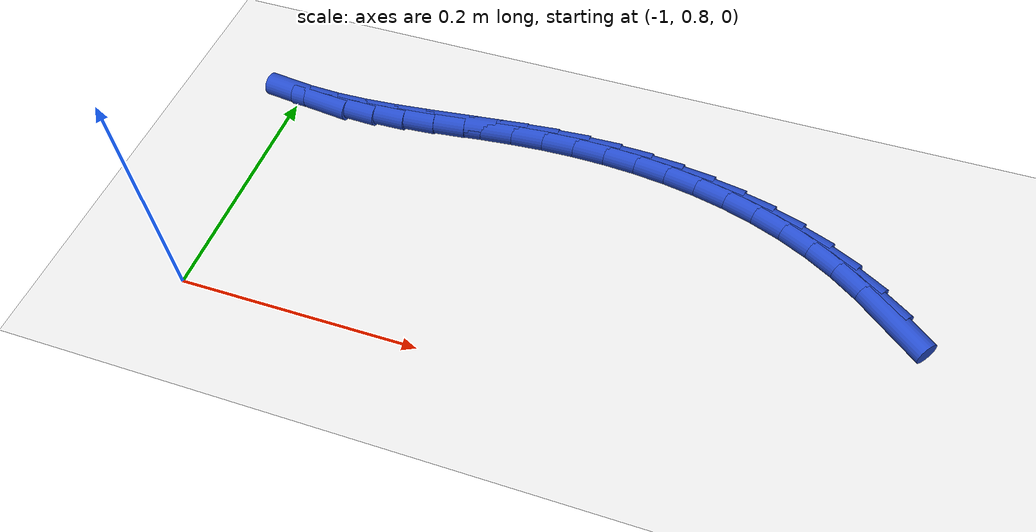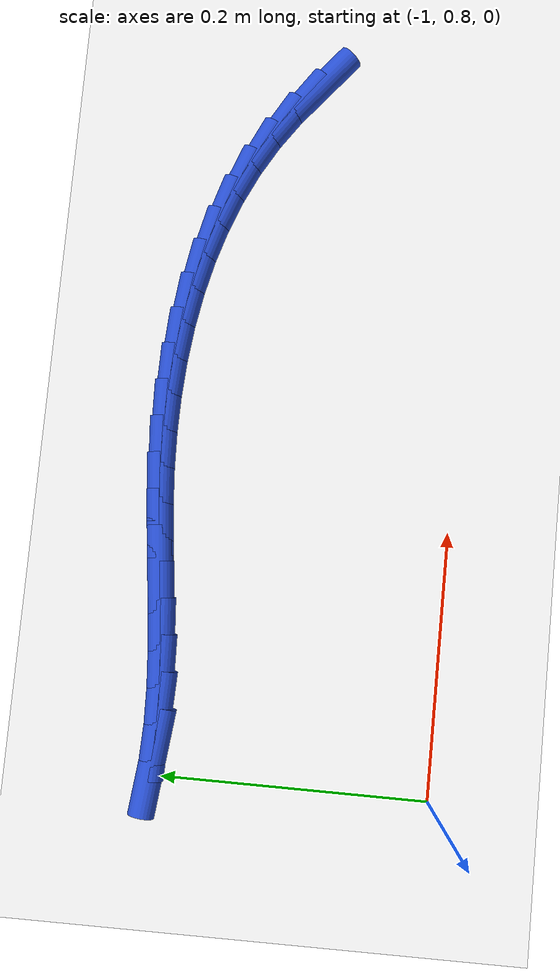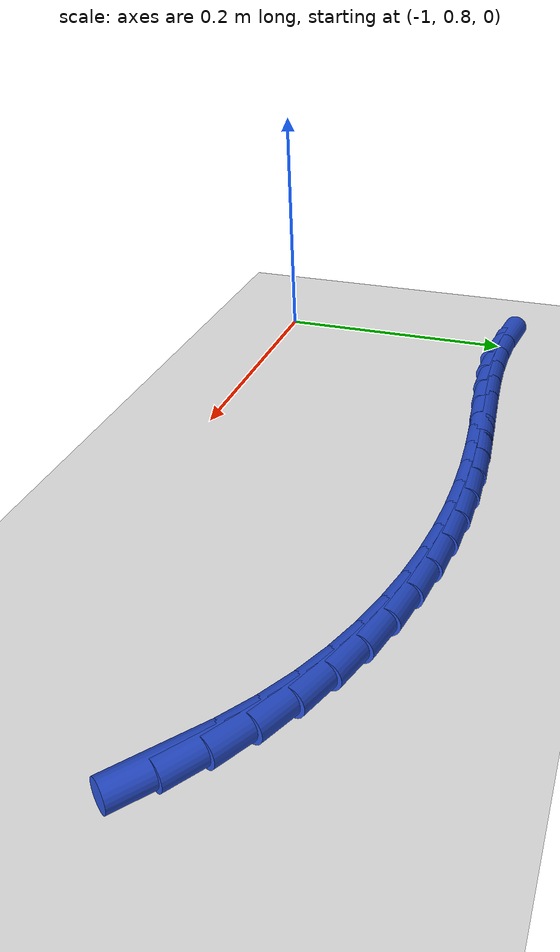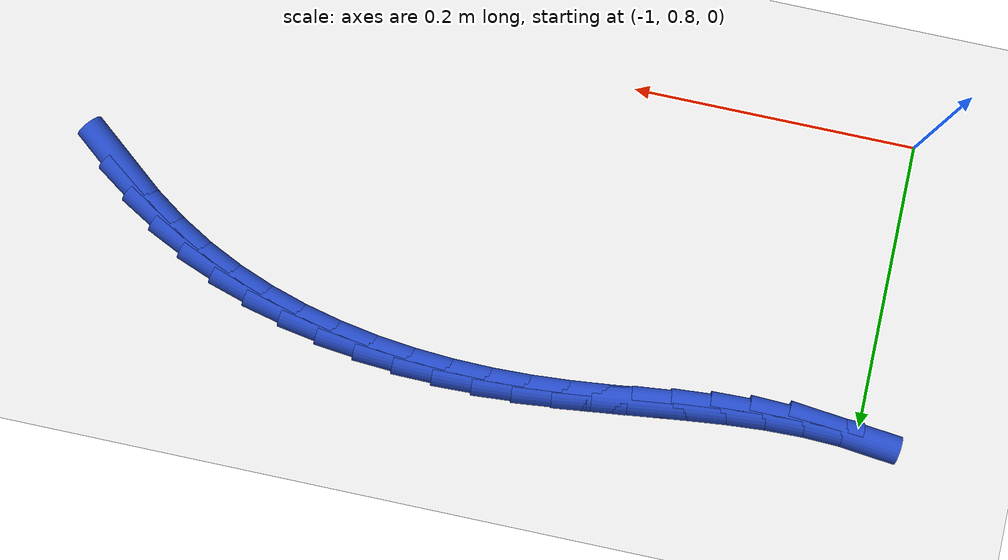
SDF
<sdf version="1.6">
 <world name="default">
  <model name="ground_plane">
   <static>1</static>
   <link name="link">
    <collision name="collision">
     <geometry><plane><normal>0 0 1</normal><size>100 100</size></plane></geometry>
     <surface><friction><ode><mu>100</mu><mu2>50</mu2></ode></friction></surface>
    </collision>
    <visual name="visual">
     <cast_shadows>0</cast_shadows>
     <geometry><plane><normal>0 0 1</normal><size>100 100</size></plane></geometry>
     <material>
      <script><uri>file://media/materials/scripts/gazebo.material</uri><name>Gazebo/WhiteGlow</name></script>
     </material>
    </visual>
   </link>
  </model>
  <model name="line">
   <link name="link_39">
    <pose>-0.46340883471702954 0.9317828956970082 0.01 0 1.57 -0.6871550664892319</pose>
    <collision name="collision">
     <geometry><cylinder><radius>0.01</radius><length>0.08</length></cylinder></geometry>
    </collision>
    <visual name="visual">
     <material>
      <script><name>Gazebo/Blue</name><uri>file://media/materials/scripts/gazebo.material</uri></script>
     </material>
     <geometry><cylinder><radius>0.01</radius><length>0.08</length></cylinder></geometry>
    </visual>
   </link>
   <link name="link_40">
    <pose>-0.4842401721432311 0.9488763506752163 0.01 0 1.57 -0.6085506453058709</pose>
    <collision name="collision">
     <geometry><cylinder><radius>0.01</radius><length>0.08</length></cylinder></geometry>
    </collision>
    <visual name="visual">
     <material>
      <script><name>Gazebo/Blue</name><uri>file://media/materials/scripts/gazebo.material</uri></script>
     </material>
     <geometry><cylinder><radius>0.01</radius><length>0.08</length></cylinder></geometry>
    </visual>
   </link>
   <link name="link_41">
    <pose>-0.5062597529535444 0.9642187952170097 0.01 0 1.57 -0.524719948001382</pose>
    <collision name="collision">
     <geometry><cylinder><radius>0.01</radius><length>0.08</length></cylinder></geometry>
    </collision>
    <visual name="visual">
     <material>
      <script><name>Gazebo/Blue</name><uri>file://media/materials/scripts/gazebo.material</uri></script>
     </material>
     <geometry><cylinder><radius>0.01</radius><length>0.08</length></cylinder></geometry>
    </visual>
   </link>
   <link name="link_42">
    <pose>-0.529484953104132 0.977662612550448 0.01 0 1.57 -0.4420830428330021</pose>
    <collision name="collision">
     <geometry><cylinder><radius>0.01</radius><length>0.08</length></cylinder></geometry>
    </collision>
    <visual name="visual">
     <material>
      <script><name>Gazebo/Blue</name><uri>file://media/materials/scripts/gazebo.material</uri></script>
     </material>
     <geometry><cylinder><radius>0.01</radius><length>0.08</length></cylinder></geometry>
    </visual>
   </link>
   <link name="link_43">
    <pose>-0.553838139457276 0.9891896513424778 0.01 0 1.57 -0.36539689269795744</pose>
    <collision name="collision">
     <geometry><cylinder><radius>0.01</radius><length>0.08</length></cylinder></geometry>
    </collision>
    <visual name="visual">
     <material>
      <script><name>Gazebo/Blue</name><uri>file://media/materials/scripts/gazebo.material</uri></script>
     </material>
     <geometry><cylinder><radius>0.01</radius><length>0.08</length></cylinder></geometry>
    </visual>
   </link>
   <link name="link_44">
    <pose>-0.5791690812609851 0.99888068639027 0.01 0 1.57 -0.2946567010735489</pose>
    <collision name="collision">
     <geometry><cylinder><radius>0.01</radius><length>0.08</length></cylinder></geometry>
    </collision>
    <visual name="visual">
     <material>
      <script><name>Gazebo/Blue</name><uri>file://media/materials/scripts/gazebo.material</uri></script>
     </material>
     <geometry><cylinder><radius>0.01</radius><length>0.08</length></cylinder></geometry>
    </visual>
   </link>
   <link name="link_45">
    <pose>-0.6053257112593284 1.0068189950281625 0.01 0 1.57 -0.22953121865876785</pose>
    <collision name="collision">
     <geometry><cylinder><radius>0.01</radius><length>0.08</length></cylinder></geometry>
    </collision>
    <visual name="visual">
     <material>
      <script><name>Gazebo/Blue</name><uri>file://media/materials/scripts/gazebo.material</uri></script>
     </material>
     <geometry><cylinder><radius>0.01</radius><length>0.08</length></cylinder></geometry>
    </visual>
   </link>
   <link name="link_46">
    <pose>-0.6321559621963749 1.013087854590494 0.01 0 1.57 -0.16955831056923235</pose>
    <collision name="collision">
     <geometry><cylinder><radius>0.01</radius><length>0.08</length></cylinder></geometry>
    </collision>
    <visual name="visual">
     <material>
      <script><name>Gazebo/Blue</name><uri>file://media/materials/scripts/gazebo.material</uri></script>
     </material>
     <geometry><cylinder><radius>0.01</radius><length>0.08</length></cylinder></geometry>
    </visual>
   </link>
   <link name="link_47">
    <pose>-0.659507766816193 1.017770542411602 0.01 0 1.57 -0.11420667659082309</pose>
    <collision name="collision">
     <geometry><cylinder><radius>0.01</radius><length>0.08</length></cylinder></geometry>
    </collision>
    <visual name="visual">
     <material>
      <script><name>Gazebo/Blue</name><uri>file://media/materials/scripts/gazebo.material</uri></script>
     </material>
     <geometry><cylinder><radius>0.01</radius><length>0.08</length></cylinder></geometry>
    </visual>
   </link>
   <link name="link_48">
    <pose>-0.687229057862852 1.0209503358258252 0.01 0 1.57 -0.06291818933645081</pose>
    <collision name="collision">
     <geometry><cylinder><radius>0.01</radius><length>0.08</length></cylinder></geometry>
    </collision>
    <visual name="visual">
     <material>
      <script><name>Gazebo/Blue</name><uri>file://media/materials/scripts/gazebo.material</uri></script>
     </material>
     <geometry><cylinder><radius>0.01</radius><length>0.08</length></cylinder></geometry>
    </visual>
   </link>
   <link name="link_49">
    <pose>-0.7151677680804205 1.0227105121675015 0.01 0 1.57 -0.015133670399451406</pose>
    <collision name="collision">
     <geometry><cylinder><radius>0.01</radius><length>0.08</length></cylinder></geometry>
    </collision>
    <visual name="visual">
     <material>
      <script><name>Gazebo/Blue</name><uri>file://media/materials/scripts/gazebo.material</uri></script>
     </material>
     <geometry><cylinder><radius>0.01</radius><length>0.08</length></cylinder></geometry>
    </visual>
   </link>
   <link name="link_50">
    <pose>-0.7431718302129673 1.023134348770969 0.01 0 1.57 0.029694156501853492</pose>
    <collision name="collision">
     <geometry><cylinder><radius>0.01</radius><length>0.08</length></cylinder></geometry>
    </collision>
    <visual name="visual">
     <material>
      <script><name>Gazebo/Blue</name><uri>file://media/materials/scripts/gazebo.material</uri></script>
     </material>
     <geometry><cylinder><radius>0.01</radius><length>0.08</length></cylinder></geometry>
    </visual>
   </link>
   <link name="link_51">
    <pose>-0.7710891770045614 1.022305122970566 0.01 0 1.57 0.07107071263932781</pose>
    <collision name="collision">
     <geometry><cylinder><radius>0.01</radius><length>0.08</length></cylinder></geometry>
    </collision>
    <visual name="visual">
     <material>
      <script><name>Gazebo/Blue</name><uri>file://media/materials/scripts/gazebo.material</uri></script>
     </material>
     <geometry><cylinder><radius>0.01</radius><length>0.08</length></cylinder></geometry>
    </visual>
   </link>
   <link name="link_52">
    <pose>-0.798783662838398 1.0203335354813368 0.01 0 1.57 0.10146768350063638</pose>
    <collision name="collision">
     <geometry><cylinder><radius>0.01</radius><length>0.08</length></cylinder></geometry>
    </collision>
    <visual name="visual">
     <material>
      <script><name>Gazebo/Blue</name><uri>file://media/materials/scripts/gazebo.material</uri></script>
     </material>
     <geometry><cylinder><radius>0.01</radius><length>0.08</length></cylinder></geometry>
    </visual>
   </link>
   <link name="link_53">
    <pose>-0.826239754249707 1.0175380290062432 0.01 0 1.57 0.11707617096821583</pose>
    <collision name="collision">
     <geometry><cylinder><radius>0.01</radius><length>0.08</length></cylinder></geometry>
    </collision>
    <visual name="visual">
     <material>
      <script><name>Gazebo/Blue</name><uri>file://media/materials/scripts/gazebo.material</uri></script>
     </material>
     <geometry><cylinder><radius>0.01</radius><length>0.08</length></cylinder></geometry>
    </visual>
   </link>
   <link name="link_54">
    <pose>-0.8534971492730531 1.01433217680743 0.01 0 1.57 0.11762012950102028</pose>
    <collision name="collision">
     <geometry><cylinder><radius>0.01</radius><length>0.08</length></cylinder></geometry>
    </collision>
    <visual name="visual">
     <material>
      <script><name>Gazebo/Blue</name><uri>file://media/materials/scripts/gazebo.material</uri></script>
     </material>
     <geometry><cylinder><radius>0.01</radius><length>0.08</length></cylinder></geometry>
    </visual>
   </link>
   <link name="link_55">
    <pose>-0.8805958326123193 1.011130045905367 0.01 0 1.57 0.10283636188877936</pose>
    <collision name="collision">
     <geometry><cylinder><radius>0.01</radius><length>0.08</length></cylinder></geometry>
    </collision>
    <visual name="visual">
     <material>
      <script><name>Gazebo/Blue</name><uri>file://media/materials/scripts/gazebo.material</uri></script>
     </material>
     <geometry><cylinder><radius>0.01</radius><length>0.08</length></cylinder></geometry>
    </visual>
   </link>
   <link name="link_56">
    <pose>-0.9075757889713887 1.0083457033205239 0.01 0 1.57 0.07245284814458858</pose>
    <collision name="collision">
     <geometry><cylinder><radius>0.01</radius><length>0.08</length></cylinder></geometry>
    </collision>
    <visual name="visual">
     <material>
      <script><name>Gazebo/Blue</name><uri>file://media/materials/scripts/gazebo.material</uri></script>
     </material>
     <geometry><cylinder><radius>0.01</radius><length>0.08</length></cylinder></geometry>
    </visual>
   </link>
   <link name="link_57">
    <pose>-0.9344770030541438 1.0063932160733704 0.01 0 1.57 0.026296999696374317</pose>
    <collision name="collision">
     <geometry><cylinder><radius>0.01</radius><length>0.08</length></cylinder></geometry>
    </collision>
    <visual name="visual">
     <material>
      <script><name>Gazebo/Blue</name><uri>file://media/materials/scripts/gazebo.material</uri></script>
     </material>
     <geometry><cylinder><radius>0.01</radius><length>0.08</length></cylinder></geometry>
    </visual>
   </link>
   <link name="link_58">
    <pose>-0.9613394595644681 1.0056866511843763 0.01 0 1.57 -0.03547631387141171</pose>
    <collision name="collision">
     <geometry><cylinder><radius>0.01</radius><length>0.08</length></cylinder></geometry>
    </collision>
    <visual name="visual">
     <material>
      <script><name>Gazebo/Blue</name><uri>file://media/materials/scripts/gazebo.material</uri></script>
     </material>
     <geometry><cylinder><radius>0.01</radius><length>0.08</length></cylinder></geometry>
    </visual>
   </link>
   <link name="link_59">
    <pose>-0.9882031432062449 1.006640075674012 0.01 0 1.57 -0.10895167903751317</pose>
    <collision name="collision">
     <geometry><cylinder><radius>0.01</radius><length>0.08</length></cylinder></geometry>
    </collision>
    <visual name="visual">
     <material>
      <script><name>Gazebo/Blue</name><uri>file://media/materials/scripts/gazebo.material</uri></script>
     </material>
     <geometry><cylinder><radius>0.01</radius><length>0.08</length></cylinder></geometry>
    </visual>
   </link>
  </model>
 </world>
</sdf>
